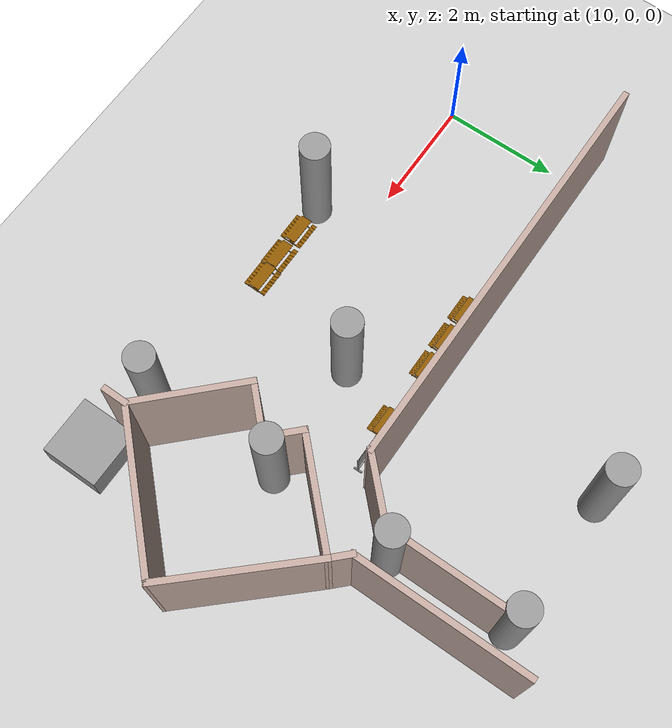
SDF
<sdf version="1.6">
 <world name="default">
  <model name="ground_plane">
   <static>1</static>
   <link name="link">
    <collision name="collision">
     <geometry><plane><normal>0 0 1</normal><size>100 100</size></plane></geometry>
     <surface>
      <contact><collide_bitmask>65535</collide_bitmask></contact>
      <friction><ode><mu>100</mu><mu2>50</mu2></ode></friction>
     </surface>
    </collision>
    <visual name="visual">
     <cast_shadows>0</cast_shadows>
     <geometry><plane><normal>0 0 1</normal><size>100 100</size></plane></geometry>
     <material>
      <script><uri>file://media/materials/scripts/gazebo.material</uri><name>Gazebo/Grey</name></script>
     </material>
    </visual>
   </link>
  </model>
  <model name="gedung_p">
   <pose>2.96636 -2.09069 0 0 -0 0</pose>
   <link name="Wall_152">
    <collision name="Wall_152_Collision">
     <geometry><box><size>7.2 0.1 2</size></box></geometry>
     <pose>0 0 1 0 -0 0</pose>
    </collision>
    <visual name="Wall_152_Visual">
     <pose>0 0 1 0 -0 0</pose>
     <geometry><box><size>7.2 0.1 2</size></box></geometry>
     <material>
      <script><uri>file://media/materials/scripts/gazebo.material</uri><name>Gazebo/Grey</name></script>
      <ambient>0.760784 0.662745 0.627451 1</ambient>
     </material>
     <meta><layer>0</layer></meta>
    </visual>
    <pose>9.87649 4.6708 0 0 -0 0</pose>
   </link>
   <link name="Wall_154">
    <collision name="Wall_154_Collision">
     <geometry><box><size>1.20026 0.1 2</size></box></geometry>
     <pose>0 0 1 0 -0 0</pose>
    </collision>
    <visual name="Wall_154_Visual">
     <pose>0 0 1 0 -0 0</pose>
     <geometry><box><size>1.20026 0.1 2</size></box></geometry>
     <material>
      <script><uri>file://media/materials/scripts/gazebo.material</uri><name>Gazebo/Grey</name></script>
      <ambient>0.760784 0.662745 0.627451 1</ambient>
     </material>
     <meta><layer>0</layer></meta>
    </visual>
    <pose>13.8155 5.0598 0 0 -0 0.785398</pose>
   </link>
   <link name="Wall_155">
    <collision name="Wall_155_Collision">
     <geometry><box><size>2.19982 0.1 2</size></box></geometry>
     <pose>0 0 1 0 -0 0</pose>
    </collision>
    <visual name="Wall_155_Visual">
     <pose>0 0 1 0 -0 0</pose>
     <geometry><box><size>2.19982 0.1 2</size></box></geometry>
     <material>
      <script><uri>file://media/materials/scripts/gazebo.material</uri><name>Gazebo/Grey</name></script>
      <ambient>0.760784 0.662745 0.627451 1</ambient>
     </material>
     <meta><layer>0</layer></meta>
    </visual>
    <pose>14.2045 6.4988 0 0 -0 1.5708</pose>
   </link>
   <link name="Wall_159">
    <collision name="Wall_159_Collision">
     <geometry><box><size>2.95 0.1 2</size></box></geometry>
     <pose>0 0 1 0 -0 0</pose>
    </collision>
    <visual name="Wall_159_Visual">
     <pose>0 0 1 0 -0 0</pose>
     <geometry><box><size>2.95 0.1 2</size></box></geometry>
     <material>
      <script><uri>file://media/materials/scripts/gazebo.material</uri><name>Gazebo/Grey</name></script>
      <ambient>0.760784 0.662745 0.627451 1</ambient>
     </material>
     <meta><layer>0</layer></meta>
    </visual>
    <pose>14.7785 6.7298 0 0 -0 -1.5708</pose>
   </link>
   <link name="Wall_161">
    <collision name="Wall_161_Collision">
     <geometry><box><size>0.449311 0.1 2</size></box></geometry>
     <pose>0 0 1 0 -0 0</pose>
    </collision>
    <visual name="Wall_161_Visual">
     <pose>0 0 1 0 -0 0</pose>
     <geometry><box><size>0.449311 0.1 2</size></box></geometry>
     <material>
      <script><uri>file://media/materials/scripts/gazebo.material</uri><name>Gazebo/Grey</name></script>
      <ambient>0.760784 0.662745 0.627451 1</ambient>
     </material>
     <meta><layer>0</layer></meta>
    </visual>
    <pose>14.902 5.18131 0 0 -0 -0.785398</pose>
   </link>
   <link name="Wall_162">
    <collision name="Wall_162_Collision">
     <geometry><box><size>1.95 0.1 2</size></box></geometry>
     <pose>0 0 1 0 -0 0</pose>
    </collision>
    <visual name="Wall_162_Visual">
     <pose>0 0 1 0 -0 0</pose>
     <geometry><box><size>1.95 0.1 2</size></box></geometry>
     <material>
      <script><uri>file://media/materials/scripts/gazebo.material</uri><name>Gazebo/Grey</name></script>
      <ambient>0.760784 0.662745 0.627451 1</ambient>
     </material>
     <meta><layer>0</layer></meta>
    </visual>
    <pose>14.3715 4.4033 0 0 -0 -2.35581</pose>
   </link>
   <link name="Wall_164">
    <collision name="Wall_164_Collision">
     <geometry><box><size>0.699982 0.1 2</size></box></geometry>
     <pose>0 0 1 0 -0 0</pose>
    </collision>
    <visual name="Wall_164_Visual">
     <pose>0 0 1 0 -0 0</pose>
     <geometry><box><size>0.699982 0.1 2</size></box></geometry>
     <material>
      <script><uri>file://media/materials/scripts/gazebo.material</uri><name>Gazebo/Grey</name></script>
      <ambient>0.760784 0.662745 0.627451 1</ambient>
     </material>
     <meta><layer>0</layer></meta>
    </visual>
    <pose>13.93 3.53681 0 0 -0 -0.78422</pose>
   </link>
   <link name="Wall_165">
    <collision name="Wall_165_Collision">
     <geometry><box><size>0.950209 0.1 2</size></box></geometry>
     <pose>0 0 1 0 -0 0</pose>
    </collision>
    <visual name="Wall_165_Visual">
     <pose>0 0 1 0 -0 0</pose>
     <geometry><box><size>0.950209 0.1 2</size></box></geometry>
     <material>
      <script><uri>file://media/materials/scripts/gazebo.material</uri><name>Gazebo/Grey</name></script>
      <ambient>0.760784 0.662745 0.627451 1</ambient>
     </material>
     <meta><layer>0</layer></meta>
    </visual>
    <pose>13.842 3.02431 0 0 -0 -2.35619</pose>
   </link>
   <link name="Wall_166">
    <collision name="Wall_166_Collision">
     <geometry><box><size>1.94965 0.1 2</size></box></geometry>
     <pose>0 0 1 0 -0 0</pose>
    </collision>
    <visual name="Wall_166_Visual">
     <pose>0 0 1 0 -0 0</pose>
     <geometry><box><size>1.94965 0.1 2</size></box></geometry>
     <material>
      <script><uri>file://media/materials/scripts/gazebo.material</uri><name>Gazebo/Grey</name></script>
      <ambient>0.760784 0.662745 0.627451 1</ambient>
     </material>
     <meta><layer>0</layer></meta>
    </visual>
    <pose>14.1955 2.06981 0 0 -0 -0.785398</pose>
   </link>
   <link name="Wall_169">
    <collision name="Wall_169_Collision">
     <geometry><box><size>2.69932 0.1 2</size></box></geometry>
     <pose>0 0 1 0 -0 0</pose>
    </collision>
    <visual name="Wall_169_Visual">
     <pose>0 0 1 0 -0 0</pose>
     <geometry><box><size>2.69932 0.1 2</size></box></geometry>
     <material>
      <script><uri>file://media/materials/scripts/gazebo.material</uri><name>Gazebo/Grey</name></script>
      <ambient>0.760784 0.662745 0.627451 1</ambient>
     </material>
     <meta><layer>0</layer></meta>
    </visual>
    <pose>15.7685 2.3348 0 0 -0 0.785398</pose>
   </link>
   <link name="Wall_173">
    <collision name="Wall_173_Collision">
     <geometry><box><size>2.55273 0.1 2</size></box></geometry>
     <pose>0 0 1 0 -0 0</pose>
    </collision>
    <visual name="Wall_173_Visual">
     <pose>0 0 1 0 -0 0</pose>
     <geometry><box><size>2.55273 0.1 2</size></box></geometry>
     <material>
      <script><uri>file://media/materials/scripts/gazebo.material</uri><name>Gazebo/Grey</name></script>
      <ambient>0.760784 0.662745 0.627451 1</ambient>
     </material>
     <meta><layer>0</layer></meta>
    </visual>
    <pose>15.8565 4.1558 0 0 -0 -0.826345</pose>
   </link>
   <link name="Wall_175">
    <collision name="Wall_175_Collision">
     <geometry><box><size>0.45 0.1 2</size></box></geometry>
     <pose>0 0 1 0 -0 0</pose>
    </collision>
    <visual name="Wall_175_Visual">
     <pose>0 0 1 0 -0 0</pose>
     <geometry><box><size>0.45 0.1 2</size></box></geometry>
     <material>
      <script><uri>file://media/materials/scripts/gazebo.material</uri><name>Gazebo/Grey</name></script>
      <ambient>0.760784 0.662745 0.627451 1</ambient>
     </material>
     <meta><layer>0</layer></meta>
    </visual>
    <pose>14.8495 1.2408 0 0 -0 -1.5708</pose>
   </link>
   <link name="Wall_248">
    <collision name="Wall_248_Collision">
     <geometry><box><size>0.344722 0.2 2</size></box></geometry>
     <pose>0 0 1 0 -0 0</pose>
    </collision>
    <visual name="Wall_248_Visual">
     <pose>0 0 1 0 -0 0</pose>
     <geometry><box><size>0.344722 0.2 2</size></box></geometry>
     <material>
      <script><uri>file://media/materials/scripts/gazebo.material</uri><name>Gazebo/Grey</name></script>
      <ambient>0.760784 0.662745 0.627451 1</ambient>
     </material>
     <meta><layer>0</layer></meta>
    </visual>
    <pose>14.197 1.14518 0 0 -0 0.132552</pose>
   </link>
   <link name="Wall_250">
    <collision name="Wall_250_Collision">
     <geometry><box><size>0.286601 0.2 2</size></box></geometry>
     <pose>0 0 1 0 -0 0</pose>
    </collision>
    <visual name="Wall_250_Visual">
     <pose>0 0 1 0 -0 0</pose>
     <geometry><box><size>0.286601 0.2 2</size></box></geometry>
     <material>
      <script><uri>file://media/materials/scripts/gazebo.material</uri><name>Gazebo/Grey</name></script>
      <ambient>0.760784 0.662745 0.627451 1</ambient>
     </material>
     <meta><layer>0</layer></meta>
    </visual>
    <pose>9.91253 1.1404 0 0 -0 0.110657</pose>
   </link>
   <link name="Wall_258">
    <collision name="Wall_258_Collision">
     <geometry><box><size>0.31516 0.2 2</size></box></geometry>
     <pose>0 0 1 0 -0 0</pose>
    </collision>
    <visual name="Wall_258_Visual">
     <pose>0 0 1 0 -0 0</pose>
     <geometry><box><size>0.31516 0.2 2</size></box></geometry>
     <material>
      <script><uri>file://media/materials/scripts/gazebo.material</uri><name>Gazebo/Grey</name></script>
      <ambient>0.760784 0.662745 0.627451 1</ambient>
     </material>
     <meta><layer>0</layer></meta>
    </visual>
    <pose>12.0309 3.27306 0 0 -0 -0.083141</pose>
   </link>
   <static>1</static>
  </model>
  <model name="tiang_besar_57">
   <link name="link_0">
    <inertial>
     <mass>1</mass>
     <inertia>
      <ixx>0.166667</ixx>
      <ixy>0</ixy>
      <ixz>0</ixz>
      <iyy>0.166667</iyy>
      <iyz>0</iyz>
      <izz>0.166667</izz>
     </inertia>
    </inertial>
    <pose>0.080543 -0.031124 0 0 -0 0</pose>
    <visual name="visual">
     <geometry>
      <mesh><uri>/home/thardi/Gazebo Objek/cylinder sedang.dae</uri><scale>1 1 1.15</scale></mesh>
     </geometry>
     <material>
      <lighting>1</lighting>
      <script><uri>file://media/materials/scripts/gazebo.material</uri><name>Gazebo/Grey</name></script>
      <shader type="vertex"><normal_map>__default__</normal_map></shader>
      <ambient>0.3 0.3 0.3 1</ambient>
      <diffuse>0.7 0.7 0.7 1</diffuse>
      <specular>0.01 0.01 0.01 1</specular>
      <emissive>0 0 0 1</emissive>
     </material>
    </visual>
    <collision name="collision">
     <geometry>
      <mesh><uri>/home/thardi/Gazebo Objek/cylinder sedang.dae</uri><scale>1 1 1.15</scale></mesh>
     </geometry>
     <surface>
      <friction>
       <ode><mu>1.15</mu><mu2>1</mu2><fdir1>0 0 0</fdir1><slip1>0</slip1><slip2>0</slip2></ode>
       <torsional>
        <coefficient>1</coefficient>
        <patch_radius>0</patch_radius>
        <surface_radius>0</surface_radius>
        <use_patch_radius>1</use_patch_radius>
        <ode><slip>0</slip></ode>
       </torsional>
      </friction>
      <bounce><restitution_coefficient>0</restitution_coefficient><threshold>1e+06</threshold></bounce>
      <contact>
       <collide_without_contact>0</collide_without_contact>
       <collide_without_contact_bitmask>1</collide_without_contact_bitmask>
       <collide_bitmask>1</collide_bitmask>
       <ode>
        <soft_cfm>0</soft_cfm>
        <soft_erp>0.2</soft_erp>
        <kp>1e+13</kp>
        <kd>1</kd>
        <max_vel>0.01</max_vel>
        <min_depth>0</min_depth>
       </ode>
       <bullet>
        <split_impulse>1</split_impulse>
        <split_impulse_penetration_threshold>-0.01</split_impulse_penetration_threshold>
        <soft_cfm>0</soft_cfm>
        <soft_erp>0.2</soft_erp>
        <kp>1e+13</kp>
        <kd>1</kd>
       </bullet>
      </contact>
     </surface>
    </collision>
   </link>
   <static>1</static>
   <pose>17.0928 -0.881818 0 0 -0 0</pose>
  </model>
  <model name="tiang_besar_60">
   <link name="link_0">
    <inertial>
     <mass>1</mass>
     <inertia>
      <ixx>0.166667</ixx>
      <ixy>0</ixy>
      <ixz>0</ixz>
      <iyy>0.166667</iyy>
      <iyz>0</iyz>
      <izz>0.166667</izz>
     </inertia>
    </inertial>
    <pose>0.080543 -0.031124 0 0 -0 0</pose>
    <visual name="visual">
     <geometry>
      <mesh><uri>/home/thardi/Gazebo Objek/cylinder sedang.dae</uri><scale>1 1 1.15</scale></mesh>
     </geometry>
     <material>
      <lighting>1</lighting>
      <script><uri>file://media/materials/scripts/gazebo.material</uri><name>Gazebo/Grey</name></script>
      <shader type="vertex"><normal_map>__default__</normal_map></shader>
      <ambient>0.3 0.3 0.3 1</ambient>
      <diffuse>0.7 0.7 0.7 1</diffuse>
      <specular>0.01 0.01 0.01 1</specular>
      <emissive>0 0 0 1</emissive>
     </material>
    </visual>
    <collision name="collision">
     <geometry>
      <mesh><uri>/home/thardi/Gazebo Objek/cylinder sedang.dae</uri><scale>1 1 1.15</scale></mesh>
     </geometry>
     <surface>
      <friction>
       <ode><mu>1.15</mu><mu2>1</mu2><fdir1>0 0 0</fdir1><slip1>0</slip1><slip2>0</slip2></ode>
       <torsional>
        <coefficient>1</coefficient>
        <patch_radius>0</patch_radius>
        <surface_radius>0</surface_radius>
        <use_patch_radius>1</use_patch_radius>
        <ode><slip>0</slip></ode>
       </torsional>
      </friction>
      <bounce><restitution_coefficient>0</restitution_coefficient><threshold>1e+06</threshold></bounce>
      <contact>
       <collide_without_contact>0</collide_without_contact>
       <collide_without_contact_bitmask>1</collide_without_contact_bitmask>
       <collide_bitmask>1</collide_bitmask>
       <ode>
        <soft_cfm>0</soft_cfm>
        <soft_erp>0.2</soft_erp>
        <kp>1e+13</kp>
        <kd>1</kd>
        <max_vel>0.01</max_vel>
        <min_depth>0</min_depth>
       </ode>
       <bullet>
        <split_impulse>1</split_impulse>
        <split_impulse_penetration_threshold>-0.01</split_impulse_penetration_threshold>
        <soft_cfm>0</soft_cfm>
        <soft_erp>0.2</soft_erp>
        <kp>1e+13</kp>
        <kd>1</kd>
       </bullet>
      </contact>
     </surface>
    </collision>
   </link>
   <static>1</static>
   <pose>12.8124 -0.83257 0 0 -0 0</pose>
  </model>
  <model name="tiang_besar_61">
   <link name="link_0">
    <inertial>
     <mass>1</mass>
     <inertia>
      <ixx>0.166667</ixx>
      <ixy>0</ixy>
      <ixz>0</ixz>
      <iyy>0.166667</iyy>
      <iyz>0</iyz>
      <izz>0.166667</izz>
     </inertia>
    </inertial>
    <pose>0.080543 -0.031124 0 0 -0 0</pose>
    <visual name="visual">
     <geometry>
      <mesh><uri>/home/thardi/Gazebo Objek/cylinder sedang.dae</uri><scale>1 1 1.15</scale></mesh>
     </geometry>
     <material>
      <lighting>1</lighting>
      <script><uri>file://media/materials/scripts/gazebo.material</uri><name>Gazebo/Grey</name></script>
      <shader type="vertex"><normal_map>__default__</normal_map></shader>
      <ambient>0.3 0.3 0.3 1</ambient>
      <diffuse>0.7 0.7 0.7 1</diffuse>
      <specular>0.01 0.01 0.01 1</specular>
      <emissive>0 0 0 1</emissive>
     </material>
    </visual>
    <collision name="collision">
     <geometry>
      <mesh><uri>/home/thardi/Gazebo Objek/cylinder sedang.dae</uri><scale>1 1 1.15</scale></mesh>
     </geometry>
     <surface>
      <friction>
       <ode><mu>1.15</mu><mu2>1</mu2><fdir1>0 0 0</fdir1><slip1>0</slip1><slip2>0</slip2></ode>
       <torsional>
        <coefficient>1</coefficient>
        <patch_radius>0</patch_radius>
        <surface_radius>0</surface_radius>
        <use_patch_radius>1</use_patch_radius>
        <ode><slip>0</slip></ode>
       </torsional>
      </friction>
      <bounce><restitution_coefficient>0</restitution_coefficient><threshold>1e+06</threshold></bounce>
      <contact>
       <collide_without_contact>0</collide_without_contact>
       <collide_without_contact_bitmask>1</collide_without_contact_bitmask>
       <collide_bitmask>1</collide_bitmask>
       <ode>
        <soft_cfm>0</soft_cfm>
        <soft_erp>0.2</soft_erp>
        <kp>1e+13</kp>
        <kd>1</kd>
        <max_vel>0.01</max_vel>
        <min_depth>0</min_depth>
       </ode>
       <bullet>
        <split_impulse>1</split_impulse>
        <split_impulse_penetration_threshold>-0.01</split_impulse_penetration_threshold>
        <soft_cfm>0</soft_cfm>
        <soft_erp>0.2</soft_erp>
        <kp>1e+13</kp>
        <kd>1</kd>
       </bullet>
      </contact>
     </surface>
    </collision>
   </link>
   <static>1</static>
   <pose>14.944 1.26218 0 0 -0 0</pose>
  </model>
  <model name="tiang_besar_62">
   <link name="link_0">
    <inertial>
     <mass>1</mass>
     <inertia>
      <ixx>0.166667</ixx>
      <ixy>0</ixy>
      <ixz>0</ixz>
      <iyy>0.166667</iyy>
      <iyz>0</iyz>
      <izz>0.166667</izz>
     </inertia>
    </inertial>
    <pose>0.080543 -0.031124 0 0 -0 0</pose>
    <visual name="visual">
     <geometry>
      <mesh><uri>/home/thardi/Gazebo Objek/cylinder sedang.dae</uri><scale>1 1 1.15</scale></mesh>
     </geometry>
     <material>
      <lighting>1</lighting>
      <script><uri>file://media/materials/scripts/gazebo.material</uri><name>Gazebo/Grey</name></script>
      <shader type="vertex"><normal_map>__default__</normal_map></shader>
      <ambient>0.3 0.3 0.3 1</ambient>
      <diffuse>0.7 0.7 0.7 1</diffuse>
      <specular>0.01 0.01 0.01 1</specular>
      <emissive>0 0 0 1</emissive>
     </material>
    </visual>
    <collision name="collision">
     <geometry>
      <mesh><uri>/home/thardi/Gazebo Objek/cylinder sedang.dae</uri><scale>1 1 1.15</scale></mesh>
     </geometry>
     <surface>
      <friction>
       <ode><mu>1.15</mu><mu2>1</mu2><fdir1>0 0 0</fdir1><slip1>0</slip1><slip2>0</slip2></ode>
       <torsional>
        <coefficient>1</coefficient>
        <patch_radius>0</patch_radius>
        <surface_radius>0</surface_radius>
        <use_patch_radius>1</use_patch_radius>
        <ode><slip>0</slip></ode>
       </torsional>
      </friction>
      <bounce><restitution_coefficient>0</restitution_coefficient><threshold>1e+06</threshold></bounce>
      <contact>
       <collide_without_contact>0</collide_without_contact>
       <collide_without_contact_bitmask>1</collide_without_contact_bitmask>
       <collide_bitmask>1</collide_bitmask>
       <ode>
        <soft_cfm>0</soft_cfm>
        <soft_erp>0.2</soft_erp>
        <kp>1e+13</kp>
        <kd>1</kd>
        <max_vel>0.01</max_vel>
        <min_depth>0</min_depth>
       </ode>
       <bullet>
        <split_impulse>1</split_impulse>
        <split_impulse_penetration_threshold>-0.01</split_impulse_penetration_threshold>
        <soft_cfm>0</soft_cfm>
        <soft_erp>0.2</soft_erp>
        <kp>1e+13</kp>
        <kd>1</kd>
       </bullet>
      </contact>
     </surface>
    </collision>
   </link>
   <static>1</static>
   <pose>17.0299 1.33713 0 0 -0 0</pose>
  </model>
  <model name="tiang_besar_64">
   <link name="link_0">
    <inertial>
     <mass>1</mass>
     <inertia>
      <ixx>0.166667</ixx>
      <ixy>0</ixy>
      <ixz>0</ixz>
      <iyy>0.166667</iyy>
      <iyz>0</iyz>
      <izz>0.166667</izz>
     </inertia>
    </inertial>
    <pose>0.080543 -0.031124 0 0 -0 0</pose>
    <visual name="visual">
     <geometry>
      <mesh><uri>/home/thardi/Gazebo Objek/cylinder sedang.dae</uri><scale>1 1 1.15</scale></mesh>
     </geometry>
     <material>
      <lighting>1</lighting>
      <script><uri>file://media/materials/scripts/gazebo.material</uri><name>Gazebo/Grey</name></script>
      <shader type="vertex"><normal_map>__default__</normal_map></shader>
      <ambient>0.3 0.3 0.3 1</ambient>
      <diffuse>0.7 0.7 0.7 1</diffuse>
      <specular>0.01 0.01 0.01 1</specular>
      <emissive>0 0 0 1</emissive>
     </material>
    </visual>
    <collision name="collision">
     <geometry>
      <mesh><uri>/home/thardi/Gazebo Objek/cylinder sedang.dae</uri><scale>1 1 1.15</scale></mesh>
     </geometry>
     <surface>
      <friction>
       <ode><mu>1.15</mu><mu2>1</mu2><fdir1>0 0 0</fdir1><slip1>0</slip1><slip2>0</slip2></ode>
       <torsional>
        <coefficient>1</coefficient>
        <patch_radius>0</patch_radius>
        <surface_radius>0</surface_radius>
        <use_patch_radius>1</use_patch_radius>
        <ode><slip>0</slip></ode>
       </torsional>
      </friction>
      <bounce><restitution_coefficient>0</restitution_coefficient><threshold>1e+06</threshold></bounce>
      <contact>
       <collide_without_contact>0</collide_without_contact>
       <collide_without_contact_bitmask>1</collide_without_contact_bitmask>
       <collide_bitmask>1</collide_bitmask>
       <ode>
        <soft_cfm>0</soft_cfm>
        <soft_erp>0.2</soft_erp>
        <kp>1e+13</kp>
        <kd>1</kd>
        <max_vel>0.01</max_vel>
        <min_depth>0</min_depth>
       </ode>
       <bullet>
        <split_impulse>1</split_impulse>
        <split_impulse_penetration_threshold>-0.01</split_impulse_penetration_threshold>
        <soft_cfm>0</soft_cfm>
        <soft_erp>0.2</soft_erp>
        <kp>1e+13</kp>
        <kd>1</kd>
       </bullet>
      </contact>
     </surface>
    </collision>
   </link>
   <static>1</static>
   <pose>17.1109 3.51192 0 0 -0 0</pose>
  </model>
  <model name="tiang_besar_65">
   <link name="link_0">
    <inertial>
     <mass>1</mass>
     <inertia>
      <ixx>0.166667</ixx>
      <ixy>0</ixy>
      <ixz>0</ixz>
      <iyy>0.166667</iyy>
      <iyz>0</iyz>
      <izz>0.166667</izz>
     </inertia>
    </inertial>
    <pose>0.080543 -0.031124 0 0 -0 0</pose>
    <visual name="visual">
     <geometry>
      <mesh><uri>/home/thardi/Gazebo Objek/cylinder sedang.dae</uri><scale>1 1 1.15</scale></mesh>
     </geometry>
     <material>
      <lighting>1</lighting>
      <script><uri>file://media/materials/scripts/gazebo.material</uri><name>Gazebo/Grey</name></script>
      <shader type="vertex"><normal_map>__default__</normal_map></shader>
      <ambient>0.3 0.3 0.3 1</ambient>
      <diffuse>0.7 0.7 0.7 1</diffuse>
      <specular>0.01 0.01 0.01 1</specular>
      <emissive>0 0 0 1</emissive>
     </material>
    </visual>
    <collision name="collision">
     <geometry>
      <mesh><uri>/home/thardi/Gazebo Objek/cylinder sedang.dae</uri><scale>1 1 1.15</scale></mesh>
     </geometry>
     <surface>
      <friction>
       <ode><mu>1.15</mu><mu2>1</mu2><fdir1>0 0 0</fdir1><slip1>0</slip1><slip2>0</slip2></ode>
       <torsional>
        <coefficient>1</coefficient>
        <patch_radius>0</patch_radius>
        <surface_radius>0</surface_radius>
        <use_patch_radius>1</use_patch_radius>
        <ode><slip>0</slip></ode>
       </torsional>
      </friction>
      <bounce><restitution_coefficient>0</restitution_coefficient><threshold>1e+06</threshold></bounce>
      <contact>
       <collide_without_contact>0</collide_without_contact>
       <collide_without_contact_bitmask>1</collide_without_contact_bitmask>
       <collide_bitmask>1</collide_bitmask>
       <ode>
        <soft_cfm>0</soft_cfm>
        <soft_erp>0.2</soft_erp>
        <kp>1e+13</kp>
        <kd>1</kd>
        <max_vel>0.01</max_vel>
        <min_depth>0</min_depth>
       </ode>
       <bullet>
        <split_impulse>1</split_impulse>
        <split_impulse_penetration_threshold>-0.01</split_impulse_penetration_threshold>
        <soft_cfm>0</soft_cfm>
        <soft_erp>0.2</soft_erp>
        <kp>1e+13</kp>
        <kd>1</kd>
       </bullet>
      </contact>
     </surface>
    </collision>
   </link>
   <static>1</static>
   <pose>16.9849 5.53935 0 0 -0 0</pose>
  </model>
  <model name="tiang_besar_71">
   <link name="link_0">
    <inertial>
     <mass>1</mass>
     <inertia>
      <ixx>0.166667</ixx>
      <ixy>0</ixy>
      <ixz>0</ixz>
      <iyy>0.166667</iyy>
      <iyz>0</iyz>
      <izz>0.166667</izz>
     </inertia>
    </inertial>
    <pose>0.080543 -0.031124 0 0 -0 0</pose>
    <visual name="visual">
     <geometry>
      <mesh><uri>/home/thardi/Gazebo Objek/cylinder sedang.dae</uri><scale>1 1 1.15</scale></mesh>
     </geometry>
     <material>
      <lighting>1</lighting>
      <script><uri>file://media/materials/scripts/gazebo.material</uri><name>Gazebo/Grey</name></script>
      <shader type="vertex"><normal_map>__default__</normal_map></shader>
      <ambient>0.3 0.3 0.3 1</ambient>
      <diffuse>0.7 0.7 0.7 1</diffuse>
      <specular>0.01 0.01 0.01 1</specular>
      <emissive>0 0 0 1</emissive>
     </material>
    </visual>
    <collision name="collision">
     <geometry>
      <mesh><uri>/home/thardi/Gazebo Objek/cylinder sedang.dae</uri><scale>1 1 1.15</scale></mesh>
     </geometry>
     <surface>
      <friction>
       <ode><mu>1.15</mu><mu2>1</mu2><fdir1>0 0 0</fdir1><slip1>0</slip1><slip2>0</slip2></ode>
       <torsional>
        <coefficient>1</coefficient>
        <patch_radius>0</patch_radius>
        <surface_radius>0</surface_radius>
        <use_patch_radius>1</use_patch_radius>
        <ode><slip>0</slip></ode>
       </torsional>
      </friction>
      <bounce><restitution_coefficient>0</restitution_coefficient><threshold>1e+06</threshold></bounce>
      <contact>
       <collide_without_contact>0</collide_without_contact>
       <collide_without_contact_bitmask>1</collide_without_contact_bitmask>
       <collide_bitmask>1</collide_bitmask>
       <ode>
        <soft_cfm>0</soft_cfm>
        <soft_erp>0.2</soft_erp>
        <kp>1e+13</kp>
        <kd>1</kd>
        <max_vel>0.01</max_vel>
        <min_depth>0</min_depth>
       </ode>
       <bullet>
        <split_impulse>1</split_impulse>
        <split_impulse_penetration_threshold>-0.01</split_impulse_penetration_threshold>
        <soft_cfm>0</soft_cfm>
        <soft_erp>0.2</soft_erp>
        <kp>1e+13</kp>
        <kd>1</kd>
       </bullet>
      </contact>
     </surface>
    </collision>
   </link>
   <static>1</static>
   <pose>14.5789 5.64549 0 0 -0 0</pose>
  </model>
  <model name="kursi_piknik_17">
   <link name="link_2">
    <inertial>
     <mass>1</mass>
     <inertia>
      <ixx>0.166667</ixx>
      <ixy>0</ixy>
      <ixz>0</ixz>
      <iyy>0.166667</iyy>
      <iyz>0</iyz>
      <izz>0.166667</izz>
     </inertia>
    </inertial>
    <visual name="visual">
     <geometry>
      <mesh><uri>/home/thardi/Gazebo Objek/kursi piknik.dae</uri><scale>0.2 0.2 0.2</scale></mesh>
     </geometry>
     <material>
      <lighting>1</lighting>
      <script><uri>file://media/materials/scripts/gazebo.material</uri><name>Gazebo/Grey</name></script>
      <shader type="vertex"><normal_map>__default__</normal_map></shader>
      <ambient>0.561 0.349 0.008 1</ambient>
      <diffuse>0.561 0.349 0.008 1</diffuse>
      <specular>0.561 0.349 0.008 1</specular>
      <emissive>0.561 0.349 0.008 1</emissive>
     </material>
    </visual>
    <collision name="collision">
     <geometry>
      <mesh><uri>/home/thardi/Gazebo Objek/kursi piknik.dae</uri><scale>0.2 0.2 0.2</scale></mesh>
     </geometry>
     <surface>
      <friction>
       <ode><mu>1</mu><mu2>1</mu2><fdir1>0 0 0</fdir1><slip1>0</slip1><slip2>0</slip2></ode>
       <torsional>
        <coefficient>1</coefficient>
        <patch_radius>0</patch_radius>
        <surface_radius>0</surface_radius>
        <use_patch_radius>1</use_patch_radius>
        <ode><slip>0</slip></ode>
       </torsional>
      </friction>
      <bounce><restitution_coefficient>0</restitution_coefficient><threshold>1e+06</threshold></bounce>
      <contact>
       <collide_without_contact>0</collide_without_contact>
       <collide_without_contact_bitmask>1</collide_without_contact_bitmask>
       <collide_bitmask>1</collide_bitmask>
       <ode>
        <soft_cfm>0</soft_cfm>
        <soft_erp>0.2</soft_erp>
        <kp>1e+13</kp>
        <kd>1</kd>
        <max_vel>0.01</max_vel>
        <min_depth>0</min_depth>
       </ode>
       <bullet>
        <split_impulse>1</split_impulse>
        <split_impulse_penetration_threshold>-0.01</split_impulse_penetration_threshold>
        <soft_cfm>0</soft_cfm>
        <soft_erp>0.2</soft_erp>
        <kp>1e+13</kp>
        <kd>1</kd>
       </bullet>
      </contact>
     </surface>
    </collision>
   </link>
   <static>1</static>
   <pose>13.4477 -0.849055 0 0 -0 0</pose>
  </model>
  <model name="kursi_piknik_18">
   <link name="link_2">
    <inertial>
     <mass>1</mass>
     <inertia>
      <ixx>0.166667</ixx>
      <ixy>0</ixy>
      <ixz>0</ixz>
      <iyy>0.166667</iyy>
      <iyz>0</iyz>
      <izz>0.166667</izz>
     </inertia>
    </inertial>
    <visual name="visual">
     <geometry>
      <mesh><uri>/home/thardi/Gazebo Objek/kursi piknik.dae</uri><scale>0.2 0.2 0.2</scale></mesh>
     </geometry>
     <material>
      <lighting>1</lighting>
      <script><uri>file://media/materials/scripts/gazebo.material</uri><name>Gazebo/Grey</name></script>
      <shader type="vertex"><normal_map>__default__</normal_map></shader>
      <ambient>0.561 0.349 0.008 1</ambient>
      <diffuse>0.561 0.349 0.008 1</diffuse>
      <specular>0.561 0.349 0.008 1</specular>
      <emissive>0.561 0.349 0.008 1</emissive>
     </material>
    </visual>
    <collision name="collision">
     <geometry>
      <mesh><uri>/home/thardi/Gazebo Objek/kursi piknik.dae</uri><scale>0.2 0.2 0.2</scale></mesh>
     </geometry>
     <surface>
      <friction>
       <ode><mu>1</mu><mu2>1</mu2><fdir1>0 0 0</fdir1><slip1>0</slip1><slip2>0</slip2></ode>
       <torsional>
        <coefficient>1</coefficient>
        <patch_radius>0</patch_radius>
        <surface_radius>0</surface_radius>
        <use_patch_radius>1</use_patch_radius>
        <ode><slip>0</slip></ode>
       </torsional>
      </friction>
      <bounce><restitution_coefficient>0</restitution_coefficient><threshold>1e+06</threshold></bounce>
      <contact>
       <collide_without_contact>0</collide_without_contact>
       <collide_without_contact_bitmask>1</collide_without_contact_bitmask>
       <collide_bitmask>1</collide_bitmask>
       <ode>
        <soft_cfm>0</soft_cfm>
        <soft_erp>0.2</soft_erp>
        <kp>1e+13</kp>
        <kd>1</kd>
        <max_vel>0.01</max_vel>
        <min_depth>0</min_depth>
       </ode>
       <bullet>
        <split_impulse>1</split_impulse>
        <split_impulse_penetration_threshold>-0.01</split_impulse_penetration_threshold>
        <soft_cfm>0</soft_cfm>
        <soft_erp>0.2</soft_erp>
        <kp>1e+13</kp>
        <kd>1</kd>
       </bullet>
      </contact>
     </surface>
    </collision>
   </link>
   <static>1</static>
   <pose>13.9978 -0.839491 0 0 -0 0</pose>
  </model>
  <model name="kursi_piknik_19">
   <link name="link_2">
    <inertial>
     <mass>1</mass>
     <inertia>
      <ixx>0.166667</ixx>
      <ixy>0</ixy>
      <ixz>0</ixz>
      <iyy>0.166667</iyy>
      <iyz>0</iyz>
      <izz>0.166667</izz>
     </inertia>
    </inertial>
    <visual name="visual">
     <geometry>
      <mesh><uri>/home/thardi/Gazebo Objek/kursi piknik.dae</uri><scale>0.2 0.2 0.2</scale></mesh>
     </geometry>
     <material>
      <lighting>1</lighting>
      <script><uri>file://media/materials/scripts/gazebo.material</uri><name>Gazebo/Grey</name></script>
      <shader type="vertex"><normal_map>__default__</normal_map></shader>
      <ambient>0.561 0.349 0.008 1</ambient>
      <diffuse>0.561 0.349 0.008 1</diffuse>
      <specular>0.561 0.349 0.008 1</specular>
      <emissive>0.561 0.349 0.008 1</emissive>
     </material>
    </visual>
    <collision name="collision">
     <geometry>
      <mesh><uri>/home/thardi/Gazebo Objek/kursi piknik.dae</uri><scale>0.2 0.2 0.2</scale></mesh>
     </geometry>
     <surface>
      <friction>
       <ode><mu>1</mu><mu2>1</mu2><fdir1>0 0 0</fdir1><slip1>0</slip1><slip2>0</slip2></ode>
       <torsional>
        <coefficient>1</coefficient>
        <patch_radius>0</patch_radius>
        <surface_radius>0</surface_radius>
        <use_patch_radius>1</use_patch_radius>
        <ode><slip>0</slip></ode>
       </torsional>
      </friction>
      <bounce><restitution_coefficient>0</restitution_coefficient><threshold>1e+06</threshold></bounce>
      <contact>
       <collide_without_contact>0</collide_without_contact>
       <collide_without_contact_bitmask>1</collide_without_contact_bitmask>
       <collide_bitmask>1</collide_bitmask>
       <ode>
        <soft_cfm>0</soft_cfm>
        <soft_erp>0.2</soft_erp>
        <kp>1e+13</kp>
        <kd>1</kd>
        <max_vel>0.01</max_vel>
        <min_depth>0</min_depth>
       </ode>
       <bullet>
        <split_impulse>1</split_impulse>
        <split_impulse_penetration_threshold>-0.01</split_impulse_penetration_threshold>
        <soft_cfm>0</soft_cfm>
        <soft_erp>0.2</soft_erp>
        <kp>1e+13</kp>
        <kd>1</kd>
       </bullet>
      </contact>
     </surface>
    </collision>
   </link>
   <static>1</static>
   <pose>14.4899 -0.827196 0 0 -0 0</pose>
  </model>
  <model name="kursi_piknik_25">
   <link name="link_2">
    <inertial>
     <mass>1</mass>
     <inertia>
      <ixx>0.166667</ixx>
      <ixy>0</ixy>
      <ixz>0</ixz>
      <iyy>0.166667</iyy>
      <iyz>0</iyz>
      <izz>0.166667</izz>
     </inertia>
    </inertial>
    <visual name="visual">
     <geometry>
      <mesh><uri>/home/thardi/Gazebo Objek/kursi piknik.dae</uri><scale>0.2 0.2 0.2</scale></mesh>
     </geometry>
     <material>
      <lighting>1</lighting>
      <script><uri>file://media/materials/scripts/gazebo.material</uri><name>Gazebo/Grey</name></script>
      <shader type="vertex"><normal_map>__default__</normal_map></shader>
      <ambient>0.561 0.349 0.008 1</ambient>
      <diffuse>0.561 0.349 0.008 1</diffuse>
      <specular>0.561 0.349 0.008 1</specular>
      <emissive>0.561 0.349 0.008 1</emissive>
     </material>
    </visual>
    <collision name="collision">
     <geometry>
      <mesh><uri>/home/thardi/Gazebo Objek/kursi piknik.dae</uri><scale>0.2 0.2 0.2</scale></mesh>
     </geometry>
     <surface>
      <friction>
       <ode><mu>1</mu><mu2>1</mu2><fdir1>0 0 0</fdir1><slip1>0</slip1><slip2>0</slip2></ode>
       <torsional>
        <coefficient>1</coefficient>
        <patch_radius>0</patch_radius>
        <surface_radius>0</surface_radius>
        <use_patch_radius>1</use_patch_radius>
        <ode><slip>0</slip></ode>
       </torsional>
      </friction>
      <bounce><restitution_coefficient>0</restitution_coefficient><threshold>1e+06</threshold></bounce>
      <contact>
       <collide_without_contact>0</collide_without_contact>
       <collide_without_contact_bitmask>1</collide_without_contact_bitmask>
       <collide_bitmask>1</collide_bitmask>
       <ode>
        <soft_cfm>0</soft_cfm>
        <soft_erp>0.2</soft_erp>
        <kp>1e+13</kp>
        <kd>1</kd>
        <max_vel>0.01</max_vel>
        <min_depth>0</min_depth>
       </ode>
       <bullet>
        <split_impulse>1</split_impulse>
        <split_impulse_penetration_threshold>-0.01</split_impulse_penetration_threshold>
        <soft_cfm>0</soft_cfm>
        <soft_erp>0.2</soft_erp>
        <kp>1e+13</kp>
        <kd>1</kd>
       </bullet>
      </contact>
     </surface>
    </collision>
   </link>
   <static>1</static>
   <pose>13.0977 2.25542 0 0 -0 0</pose>
  </model>
  <model name="kursi_piknik_26">
   <link name="link_2">
    <inertial>
     <mass>1</mass>
     <inertia>
      <ixx>0.166667</ixx>
      <ixy>0</ixy>
      <ixz>0</ixz>
      <iyy>0.166667</iyy>
      <iyz>0</iyz>
      <izz>0.166667</izz>
     </inertia>
    </inertial>
    <visual name="visual">
     <geometry>
      <mesh><uri>/home/thardi/Gazebo Objek/kursi piknik.dae</uri><scale>0.2 0.2 0.2</scale></mesh>
     </geometry>
     <material>
      <lighting>1</lighting>
      <script><uri>file://media/materials/scripts/gazebo.material</uri><name>Gazebo/Grey</name></script>
      <shader type="vertex"><normal_map>__default__</normal_map></shader>
      <ambient>0.561 0.349 0.008 1</ambient>
      <diffuse>0.561 0.349 0.008 1</diffuse>
      <specular>0.561 0.349 0.008 1</specular>
      <emissive>0.561 0.349 0.008 1</emissive>
     </material>
    </visual>
    <collision name="collision">
     <geometry>
      <mesh><uri>/home/thardi/Gazebo Objek/kursi piknik.dae</uri><scale>0.2 0.2 0.2</scale></mesh>
     </geometry>
     <surface>
      <friction>
       <ode><mu>1</mu><mu2>1</mu2><fdir1>0 0 0</fdir1><slip1>0</slip1><slip2>0</slip2></ode>
       <torsional>
        <coefficient>1</coefficient>
        <patch_radius>0</patch_radius>
        <surface_radius>0</surface_radius>
        <use_patch_radius>1</use_patch_radius>
        <ode><slip>0</slip></ode>
       </torsional>
      </friction>
      <bounce><restitution_coefficient>0</restitution_coefficient><threshold>1e+06</threshold></bounce>
      <contact>
       <collide_without_contact>0</collide_without_contact>
       <collide_without_contact_bitmask>1</collide_without_contact_bitmask>
       <collide_bitmask>1</collide_bitmask>
       <ode>
        <soft_cfm>0</soft_cfm>
        <soft_erp>0.2</soft_erp>
        <kp>1e+13</kp>
        <kd>1</kd>
        <max_vel>0.01</max_vel>
        <min_depth>0</min_depth>
       </ode>
       <bullet>
        <split_impulse>1</split_impulse>
        <split_impulse_penetration_threshold>-0.01</split_impulse_penetration_threshold>
        <soft_cfm>0</soft_cfm>
        <soft_erp>0.2</soft_erp>
        <kp>1e+13</kp>
        <kd>1</kd>
       </bullet>
      </contact>
     </surface>
    </collision>
   </link>
   <static>1</static>
   <pose>13.6783 2.26691 0 0 -0 0</pose>
  </model>
  <model name="kursi_piknik_27">
   <link name="link_2">
    <inertial>
     <mass>1</mass>
     <inertia>
      <ixx>0.166667</ixx>
      <ixy>0</ixy>
      <ixz>0</ixz>
      <iyy>0.166667</iyy>
      <iyz>0</iyz>
      <izz>0.166667</izz>
     </inertia>
    </inertial>
    <visual name="visual">
     <geometry>
      <mesh><uri>/home/thardi/Gazebo Objek/kursi piknik.dae</uri><scale>0.2 0.2 0.2</scale></mesh>
     </geometry>
     <material>
      <lighting>1</lighting>
      <script><uri>file://media/materials/scripts/gazebo.material</uri><name>Gazebo/Grey</name></script>
      <shader type="vertex"><normal_map>__default__</normal_map></shader>
      <ambient>0.561 0.349 0.008 1</ambient>
      <diffuse>0.561 0.349 0.008 1</diffuse>
      <specular>0.561 0.349 0.008 1</specular>
      <emissive>0.561 0.349 0.008 1</emissive>
     </material>
    </visual>
    <collision name="collision">
     <geometry>
      <mesh><uri>/home/thardi/Gazebo Objek/kursi piknik.dae</uri><scale>0.2 0.2 0.2</scale></mesh>
     </geometry>
     <surface>
      <friction>
       <ode><mu>1</mu><mu2>1</mu2><fdir1>0 0 0</fdir1><slip1>0</slip1><slip2>0</slip2></ode>
       <torsional>
        <coefficient>1</coefficient>
        <patch_radius>0</patch_radius>
        <surface_radius>0</surface_radius>
        <use_patch_radius>1</use_patch_radius>
        <ode><slip>0</slip></ode>
       </torsional>
      </friction>
      <bounce><restitution_coefficient>0</restitution_coefficient><threshold>1e+06</threshold></bounce>
      <contact>
       <collide_without_contact>0</collide_without_contact>
       <collide_without_contact_bitmask>1</collide_without_contact_bitmask>
       <collide_bitmask>1</collide_bitmask>
       <ode>
        <soft_cfm>0</soft_cfm>
        <soft_erp>0.2</soft_erp>
        <kp>1e+13</kp>
        <kd>1</kd>
        <max_vel>0.01</max_vel>
        <min_depth>0</min_depth>
       </ode>
       <bullet>
        <split_impulse>1</split_impulse>
        <split_impulse_penetration_threshold>-0.01</split_impulse_penetration_threshold>
        <soft_cfm>0</soft_cfm>
        <soft_erp>0.2</soft_erp>
        <kp>1e+13</kp>
        <kd>1</kd>
       </bullet>
      </contact>
     </surface>
    </collision>
   </link>
   <static>1</static>
   <pose>14.2602 2.27842 0 0 -0 0</pose>
  </model>
  <model name="kursi_piknik_28">
   <link name="link_2">
    <inertial>
     <mass>1</mass>
     <inertia>
      <ixx>0.166667</ixx>
      <ixy>0</ixy>
      <ixz>0</ixz>
      <iyy>0.166667</iyy>
      <iyz>0</iyz>
      <izz>0.166667</izz>
     </inertia>
    </inertial>
    <visual name="visual">
     <geometry>
      <mesh><uri>/home/thardi/Gazebo Objek/kursi piknik.dae</uri><scale>0.2 0.2 0.2</scale></mesh>
     </geometry>
     <material>
      <lighting>1</lighting>
      <script><uri>file://media/materials/scripts/gazebo.material</uri><name>Gazebo/Grey</name></script>
      <shader type="vertex"><normal_map>__default__</normal_map></shader>
      <ambient>0.561 0.349 0.008 1</ambient>
      <diffuse>0.561 0.349 0.008 1</diffuse>
      <specular>0.561 0.349 0.008 1</specular>
      <emissive>0.561 0.349 0.008 1</emissive>
     </material>
    </visual>
    <collision name="collision">
     <geometry>
      <mesh><uri>/home/thardi/Gazebo Objek/kursi piknik.dae</uri><scale>0.2 0.2 0.2</scale></mesh>
     </geometry>
     <surface>
      <friction>
       <ode><mu>1</mu><mu2>1</mu2><fdir1>0 0 0</fdir1><slip1>0</slip1><slip2>0</slip2></ode>
       <torsional>
        <coefficient>1</coefficient>
        <patch_radius>0</patch_radius>
        <surface_radius>0</surface_radius>
        <use_patch_radius>1</use_patch_radius>
        <ode><slip>0</slip></ode>
       </torsional>
      </friction>
      <bounce><restitution_coefficient>0</restitution_coefficient><threshold>1e+06</threshold></bounce>
      <contact>
       <collide_without_contact>0</collide_without_contact>
       <collide_without_contact_bitmask>1</collide_without_contact_bitmask>
       <collide_bitmask>1</collide_bitmask>
       <ode>
        <soft_cfm>0</soft_cfm>
        <soft_erp>0.2</soft_erp>
        <kp>1e+13</kp>
        <kd>1</kd>
        <max_vel>0.01</max_vel>
        <min_depth>0</min_depth>
       </ode>
       <bullet>
        <split_impulse>1</split_impulse>
        <split_impulse_penetration_threshold>-0.01</split_impulse_penetration_threshold>
        <soft_cfm>0</soft_cfm>
        <soft_erp>0.2</soft_erp>
        <kp>1e+13</kp>
        <kd>1</kd>
       </bullet>
      </contact>
     </surface>
    </collision>
   </link>
   <static>1</static>
   <pose>15.4122 2.25227 0 0 -0 0</pose>
  </model>
  <model name="papan_tulis">
   <link name="link_11">
    <inertial>
     <mass>1</mass>
     <inertia>
      <ixx>0.166667</ixx>
      <ixy>0</ixy>
      <ixz>0</ixz>
      <iyy>0.166667</iyy>
      <iyz>0</iyz>
      <izz>0.166667</izz>
     </inertia>
    </inertial>
    <visual name="visual">
     <geometry>
      <mesh><uri>/home/thardi/Gazebo Objek/papan tulis.dae</uri><scale>0.1 0.1 0.1</scale></mesh>
     </geometry>
     <material>
      <lighting>1</lighting>
      <script><uri>file://media/materials/scripts/gazebo.material</uri><name>Gazebo/Grey</name></script>
      <shader type="vertex"><normal_map>__default__</normal_map></shader>
      <ambient>1 1 1 1</ambient>
      <diffuse>1 1 1 1</diffuse>
      <specular>1 1 1 1</specular>
      <emissive>1 1 1 1</emissive>
     </material>
    </visual>
    <collision name="collision">
     <geometry>
      <mesh><uri>/home/thardi/Gazebo Objek/papan tulis.dae</uri><scale>0.1 0.1 0.1</scale></mesh>
     </geometry>
     <surface>
      <friction>
       <ode><mu>1</mu><mu2>1</mu2><fdir1>0 0 0</fdir1><slip1>0</slip1><slip2>0</slip2></ode>
       <torsional>
        <coefficient>1</coefficient>
        <patch_radius>0</patch_radius>
        <surface_radius>0</surface_radius>
        <use_patch_radius>1</use_patch_radius>
        <ode><slip>0</slip></ode>
       </torsional>
      </friction>
      <bounce><restitution_coefficient>0</restitution_coefficient><threshold>1e+06</threshold></bounce>
      <contact>
       <collide_without_contact>0</collide_without_contact>
       <collide_without_contact_bitmask>1</collide_without_contact_bitmask>
       <collide_bitmask>1</collide_bitmask>
       <ode>
        <soft_cfm>0</soft_cfm>
        <soft_erp>0.2</soft_erp>
        <kp>1e+13</kp>
        <kd>1</kd>
        <max_vel>0.01</max_vel>
        <min_depth>0</min_depth>
       </ode>
       <bullet>
        <split_impulse>1</split_impulse>
        <split_impulse_penetration_threshold>-0.01</split_impulse_penetration_threshold>
        <soft_cfm>0</soft_cfm>
        <soft_erp>0.2</soft_erp>
        <kp>1e+13</kp>
        <kd>1</kd>
       </bullet>
      </contact>
     </surface>
    </collision>
   </link>
   <static>1</static>
   <pose>15.7738 2.3788 0 0 -0 0</pose>
  </model>
  <model name="blok_9">
   <link name="link_0">
    <inertial>
     <mass>1</mass>
     <inertia>
      <ixx>0.166667</ixx>
      <ixy>0</ixy>
      <ixz>0</ixz>
      <iyy>0.166667</iyy>
      <iyz>0</iyz>
      <izz>0.166667</izz>
     </inertia>
    </inertial>
    <visual name="visual">
     <geometry><box><size>1 1 1</size></box></geometry>
     <material>
      <lighting>1</lighting>
      <script><uri>file://media/materials/scripts/gazebo.material</uri><name>Gazebo/Grey</name></script>
      <shader type="vertex"><normal_map>__default__</normal_map></shader>
      <ambient>0.3 0.3 0.3 1</ambient>
      <diffuse>0.7 0.7 0.7 1</diffuse>
      <specular>0.01 0.01 0.01 1</specular>
      <emissive>0 0 0 1</emissive>
     </material>
    </visual>
    <collision name="collision">
     <geometry><box><size>1 1 1</size></box></geometry>
     <surface>
      <friction>
       <ode><mu>1</mu><mu2>1</mu2><fdir1>0 0 0</fdir1><slip1>0</slip1><slip2>0</slip2></ode>
       <torsional>
        <coefficient>1</coefficient>
        <patch_radius>0</patch_radius>
        <surface_radius>0</surface_radius>
        <use_patch_radius>1</use_patch_radius>
        <ode><slip>0</slip></ode>
       </torsional>
      </friction>
      <bounce><restitution_coefficient>0</restitution_coefficient><threshold>1e+06</threshold></bounce>
      <contact>
       <collide_without_contact>0</collide_without_contact>
       <collide_without_contact_bitmask>1</collide_without_contact_bitmask>
       <collide_bitmask>1</collide_bitmask>
       <ode>
        <soft_cfm>0</soft_cfm>
        <soft_erp>0.2</soft_erp>
        <kp>1e+13</kp>
        <kd>1</kd>
        <max_vel>0.01</max_vel>
        <min_depth>0</min_depth>
       </ode>
       <bullet>
        <split_impulse>1</split_impulse>
        <split_impulse_penetration_threshold>-0.01</split_impulse_penetration_threshold>
        <soft_cfm>0</soft_cfm>
        <soft_erp>0.2</soft_erp>
        <kp>1e+13</kp>
        <kd>1</kd>
       </bullet>
      </contact>
     </surface>
    </collision>
   </link>
   <static>1</static>
   <pose>18.3614 -1.25107 0 0 -0 0</pose>
  </model>
  <model name="pot_3">
   <link name="link_12">
    <inertial>
     <mass>1</mass>
     <inertia>
      <ixx>0.166667</ixx>
      <ixy>0</ixy>
      <ixz>0</ixz>
      <iyy>0.166667</iyy>
      <iyz>0</iyz>
      <izz>0.166667</izz>
     </inertia>
    </inertial>
    <visual name="visual">
     <geometry><mesh><uri>/home/thardi/Gazebo Objek/pot.dae</uri><scale>0.2 0.2 0.2</scale></mesh></geometry>
     <material>
      <lighting>1</lighting>
      <script><uri>file://media/materials/scripts/gazebo.material</uri><name>Gazebo/Grey</name></script>
      <shader type="vertex"><normal_map>__default__</normal_map></shader>
      <ambient>0.3 0.3 0.3 1</ambient>
      <diffuse>0.7 0.7 0.7 1</diffuse>
      <specular>0.01 0.01 0.01 1</specular>
      <emissive>0 0 0 1</emissive>
     </material>
    </visual>
    <collision name="collision">
     <geometry><mesh><uri>/home/thardi/Gazebo Objek/pot.dae</uri><scale>0.2 0.2 0.2</scale></mesh></geometry>
     <surface>
      <friction>
       <ode><mu>1</mu><mu2>1</mu2><fdir1>0 0 0</fdir1><slip1>0</slip1><slip2>0</slip2></ode>
       <torsional>
        <coefficient>1</coefficient>
        <patch_radius>0</patch_radius>
        <surface_radius>0</surface_radius>
        <use_patch_radius>1</use_patch_radius>
        <ode><slip>0</slip></ode>
       </torsional>
      </friction>
      <bounce><restitution_coefficient>0</restitution_coefficient><threshold>1e+06</threshold></bounce>
      <contact>
       <collide_without_contact>0</collide_without_contact>
       <collide_without_contact_bitmask>1</collide_without_contact_bitmask>
       <collide_bitmask>1</collide_bitmask>
       <ode>
        <soft_cfm>0</soft_cfm>
        <soft_erp>0.2</soft_erp>
        <kp>1e+13</kp>
        <kd>1</kd>
        <max_vel>0.01</max_vel>
        <min_depth>0</min_depth>
       </ode>
       <bullet>
        <split_impulse>1</split_impulse>
        <split_impulse_penetration_threshold>-0.01</split_impulse_penetration_threshold>
        <soft_cfm>0</soft_cfm>
        <soft_erp>0.2</soft_erp>
        <kp>1e+13</kp>
        <kd>1</kd>
       </bullet>
      </contact>
     </surface>
    </collision>
   </link>
   <static>1</static>
   <pose>16.8749 -0.479687 0 0 -0 0</pose>
  </model>
  <model name="pot_4">
   <link name="link_12">
    <inertial>
     <mass>1</mass>
     <inertia>
      <ixx>0.166667</ixx>
      <ixy>0</ixy>
      <ixz>0</ixz>
      <iyy>0.166667</iyy>
      <iyz>0</iyz>
      <izz>0.166667</izz>
     </inertia>
    </inertial>
    <visual name="visual">
     <geometry><mesh><uri>/home/thardi/Gazebo Objek/pot.dae</uri><scale>0.2 0.2 0.2</scale></mesh></geometry>
     <material>
      <lighting>1</lighting>
      <script><uri>file://media/materials/scripts/gazebo.material</uri><name>Gazebo/Grey</name></script>
      <shader type="vertex"><normal_map>__default__</normal_map></shader>
      <ambient>0.3 0.3 0.3 1</ambient>
      <diffuse>0.7 0.7 0.7 1</diffuse>
      <specular>0.01 0.01 0.01 1</specular>
      <emissive>0 0 0 1</emissive>
     </material>
    </visual>
    <collision name="collision">
     <geometry><mesh><uri>/home/thardi/Gazebo Objek/pot.dae</uri><scale>0.2 0.2 0.2</scale></mesh></geometry>
     <surface>
      <friction>
       <ode><mu>1</mu><mu2>1</mu2><fdir1>0 0 0</fdir1><slip1>0</slip1><slip2>0</slip2></ode>
       <torsional>
        <coefficient>1</coefficient>
        <patch_radius>0</patch_radius>
        <surface_radius>0</surface_radius>
        <use_patch_radius>1</use_patch_radius>
        <ode><slip>0</slip></ode>
       </torsional>
      </friction>
      <bounce><restitution_coefficient>0</restitution_coefficient><threshold>1e+06</threshold></bounce>
      <contact>
       <collide_without_contact>0</collide_without_contact>
       <collide_without_contact_bitmask>1</collide_without_contact_bitmask>
       <collide_bitmask>1</collide_bitmask>
       <ode>
        <soft_cfm>0</soft_cfm>
        <soft_erp>0.2</soft_erp>
        <kp>1e+13</kp>
        <kd>1</kd>
        <max_vel>0.01</max_vel>
        <min_depth>0</min_depth>
       </ode>
       <bullet>
        <split_impulse>1</split_impulse>
        <split_impulse_penetration_threshold>-0.01</split_impulse_penetration_threshold>
        <soft_cfm>0</soft_cfm>
        <soft_erp>0.2</soft_erp>
        <kp>1e+13</kp>
        <kd>1</kd>
       </bullet>
      </contact>
     </surface>
    </collision>
   </link>
   <static>1</static>
   <pose>16.5851 1.24505 0 0 -0 0</pose>
  </model>
 </world>
</sdf>
